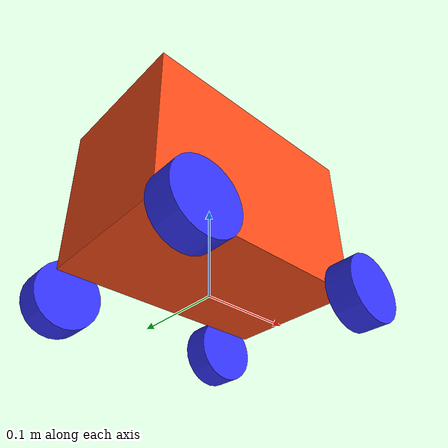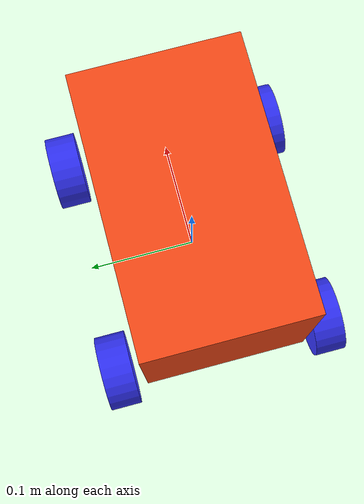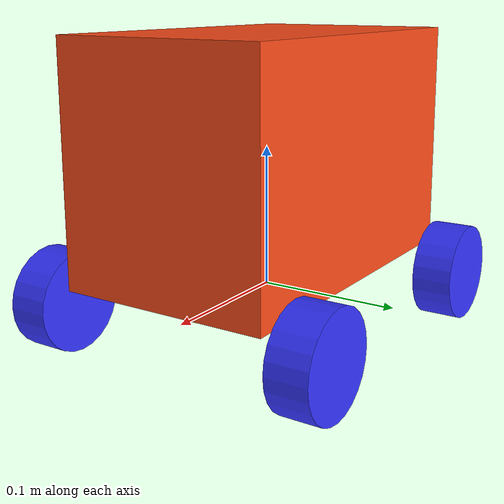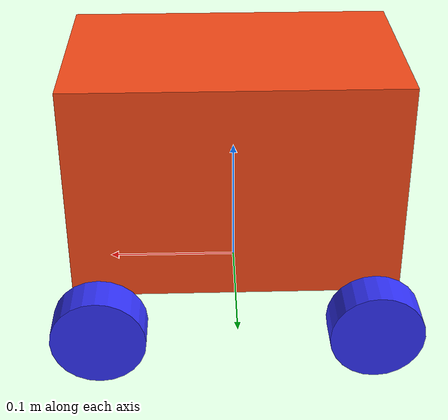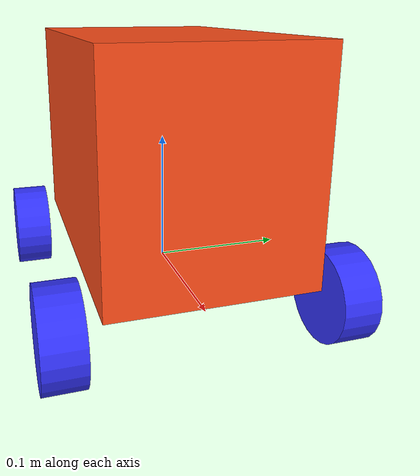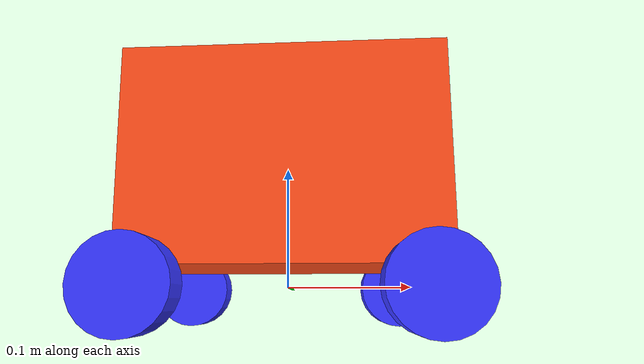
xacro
<?xml version="1.0"?>
<robot xmlns:xacro="http://www.ros.org/wiki/xacro">

    <xacro:include filename="inertial_macros.xacro"/>

    <xacro:property name="chassis_length" value="0.24455"/>
    <xacro:property name="chassis_width" value="0.149225"/>
    <xacro:property name="chassis_height" value="0.1651"/>
    <xacro:property name="chassis_mass" value="3.40194"/>
    <xacro:property name="wheel_radius" value="0.034925"/>
    <xacro:property name="wheel_thickness" value="0.028575"/>
    <xacro:property name="wheel_mass" value="0.05"/>
    <xacro:property name="wheel_offset_x" value="0.1016"/>
    <xacro:property name="wheel_offset_y" value="0.0993"/>
    <xacro:property name="wheel_offset_z" value="-0.0150241"/>

    <material name="white">
        <color rgba="1 1 1 1"/>
    </material>

    <material name="orange">
        <color rgba="1 0.3 0.1 1"/>
    </material>

    <material name="blue">
        <color rgba="0.2 0.2 1 1"/>
    </material>

    <material name="black">
        <color rgba="0 0 0 1"/>
    </material>

    <material name="red">
        <color rgba="1 0 0 1"/>
    </material>

    <!-- BASE LINK -->

    <link name="base_link">
    </link>

    <!-- BASE_FOOTPRINT LINK -->

    <joint name="base_footprint_joint" type="fixed">
        <parent link="base_link"/>
        <child link="base_footprint"/>
        <origin xyz="0 0 0" rpy="0 0 0"/>
    </joint>

    <link name="base_footprint">
    </link>

    <!-- CHASSIS LINK -->

    <joint name="chassis_joint" type="fixed">
        <parent link="base_link"/>
        <child link="chassis"/>
        <origin xyz="0 0 ${-wheel_offset_z}"/>
    </joint>

    <link name="chassis">
        <visual>
            <origin xyz="0 0 ${chassis_height/2}"/>
            <geometry>
                <box size="${chassis_length} ${chassis_width} ${chassis_height}"/>
            </geometry>
            <material name="orange"/>
        </visual>
        <collision>
            <origin xyz="0 0 ${chassis_height/2}"/>
            <geometry>
                <box size="${chassis_length} ${chassis_width} ${chassis_height}"/>
            </geometry>
        </collision>
        <xacro:inertial_box mass="0.5" x="${chassis_length}" y="${chassis_width}" z="${chassis_height}">
            <origin xyz="0 0 ${chassis_height/2}" rpy="0 0 0"/>
        </xacro:inertial_box>
    </link>

    <gazebo reference="chassis">
        <material>Gazebo/Orange</material>
    </gazebo>

    <!-- FRONT LEFT WHEEL LINK -->

    <joint name="front_left_wheel_joint" type="continuous">
        <parent link="base_link"/>
        <child link="front_left_wheel"/>
        <origin xyz="${wheel_offset_x} ${-wheel_offset_y} 0" rpy="${pi/2} 0 0"/>
        <axis xyz="0 0 -1"/>
        <limit effort="10000" velocity="1000"/>
        <dynamics damping="1.0" friction="1.0"/>
    </joint>

    <link name="front_left_wheel">
        <visual>
            <geometry>
                <cylinder radius="${wheel_radius}" length="${wheel_thickness}"/>
            </geometry>
            <material name="blue"/>
        </visual>
        <collision>
            <geometry>
                <sphere radius="${wheel_radius}"/>
            </geometry>
        </collision>
        <xacro:inertial_cylinder mass="${wheel_mass}" length="${wheel_thickness}" radius="${wheel_radius}">
            <origin xyz="0 0 0" rpy="0 0 0"/>
        </xacro:inertial_cylinder>
    </link>

    <gazebo reference="front_left_wheel">
        <material>Gazebo/Blue</material>
    </gazebo>

    <!-- BACK LEFT WHEEL LINK -->

    <joint name="back_left_wheel_joint" type="continuous">
        <parent link="base_link"/>
        <child link="back_left_wheel"/>
        <origin xyz="${-wheel_offset_x} ${-wheel_offset_y} 0" rpy="${pi/2} 0 0"/>
        <axis xyz="0 0 -1"/>
        <limit effort="10000" velocity="1000"/>
        <dynamics damping="1.0" friction="1.0"/>
    </joint>

    <link name="back_left_wheel">
        <visual>
            <geometry>
                <cylinder radius="${wheel_radius}" length="${wheel_thickness}"/>
            </geometry>
            <material name="blue"/>
        </visual>
        <collision>
            <geometry>
                <sphere radius="${wheel_radius}"/>
            </geometry>
        </collision>
        <xacro:inertial_cylinder mass="${wheel_mass}" length="${wheel_thickness}" radius="${wheel_radius}">
            <origin xyz="0 0 0" rpy="0 0 0"/>
        </xacro:inertial_cylinder>
    </link>

    <gazebo reference="back_left_wheel">
        <material>Gazebo/Blue</material>
    </gazebo>

    <!-- FRONT RIGHT WHEEL LINK -->

    <joint name="front_right_wheel_joint" type="continuous">
        <parent link="base_link"/>
        <child link="front_right_wheel"/>
        <origin xyz="${wheel_offset_x} ${wheel_offset_y} 0" rpy="-${pi/2} 0 0"/>
        <axis xyz="0 0 1"/>
        <limit effort="10000" velocity="1000"/>
        <dynamics damping="1.0" friction="1.0"/>
    </joint>

    <link name="front_right_wheel">
        <visual>
            <geometry>
                <cylinder radius="${wheel_radius}" length="${wheel_thickness}"/>
            </geometry>
            <material name="blue"/>
        </visual>
        <collision>
            <geometry>
                <sphere radius="${wheel_radius}"/>
            </geometry>
        </collision>
        <xacro:inertial_cylinder mass="${wheel_mass}" length="${wheel_thickness}" radius="${wheel_radius}">
            <origin xyz="0 0 0" rpy="0 0 0"/>
        </xacro:inertial_cylinder>
    </link>

    <gazebo reference="front_right_wheel">
        <material>Gazebo/Blue</material>
    </gazebo>

    <!-- BACK RIGHT WHEEL LINK -->

    <joint name="back_right_wheel_joint" type="continuous">
        <parent link="base_link"/>
        <child link="back_right_wheel"/>
        <origin xyz="${-wheel_offset_x} ${wheel_offset_y} 0" rpy="-${pi/2} 0 0"/>
        <axis xyz="0 0 1"/>
        <limit effort="10000" velocity="1000"/>
        <dynamics damping="1.0" friction="1.0"/>
    </joint>

    <link name="back_right_wheel">
        <visual>
            <geometry>
                <cylinder radius="${wheel_radius}" length="${wheel_thickness}"/>
            </geometry>
            <material name="blue"/>
        </visual>
        <collision>
            <geometry>
                <sphere radius="${wheel_radius}"/>
            </geometry>
        </collision>
        <xacro:inertial_cylinder mass="${wheel_mass}" length="${wheel_thickness}" radius="${wheel_radius}">
            <origin xyz="0 0 0" rpy="0 0 0"/>
        </xacro:inertial_cylinder>
    </link>

    <gazebo reference="back_right_wheel">
        <material>Gazebo/Blue</material>

    </gazebo>

</robot>
